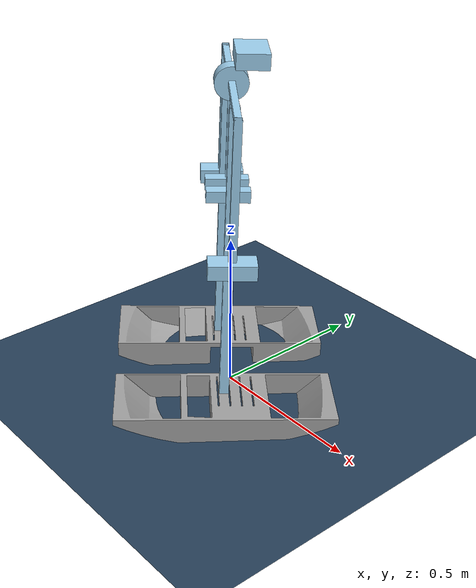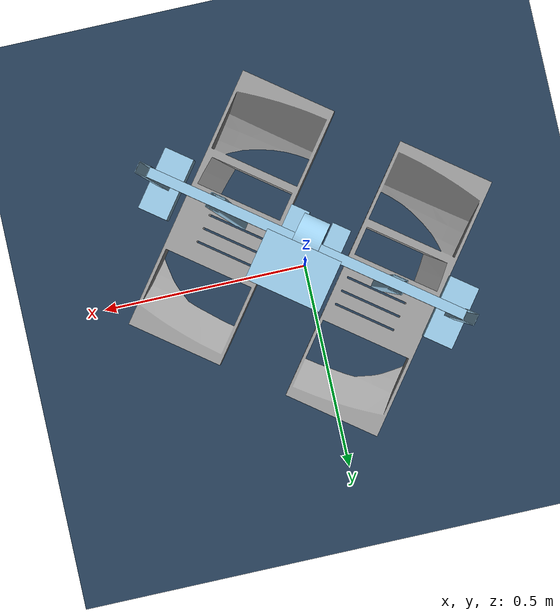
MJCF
<mujoco model="scene">
    <include file="robot.xml" />

    <visual>
        <headlight diffuse="0.6 0.6 0.6" ambient="0.3 0.3 0.3" specular="0 0 0" />
        <rgba haze="0.15 0.25 0.35 1" />
        <global azimuth="160" elevation="-20" />
    </visual>

    <asset>
        <texture type="skybox" builtin="gradient" rgb1="0.3 0.5 0.7" rgb2="0 0 0" width="512"
            height="3072" />
        <texture type="2d" name="groundplane" builtin="checker" mark="edge" rgb1="0.2 0.3 0.4"
            rgb2="0.1 0.2 0.3"
            markrgb="0.8 0.8 0.8" width="300" height="300" />
        <material name="groundplane" texture="groundplane" texuniform="true" texrepeat="5 5"
            reflectance="0.2" />
    </asset>

    <worldbody>
        <light pos="0 0 3.5" dir="0 0 -1" directional="true" />
        <geom name="floor" size="0 0 0.05" pos="0 0 0" friction = "1 0.003 0.2" type="plane" material="groundplane" />
    </worldbody>
</mujoco>

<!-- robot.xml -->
<!-- Generated using onshape-to-robot -->
<!-- Onshape https://cad.onshape.com/documents/17c5c8d07f4ec308269aab5c/w/49bf5d1c311d43a28f235e29/e/5fc1d1e4321a0935153c1d8f -->
<mujoco model="Bigfoot">
  <compiler angle="radian" meshdir="assets" autolimits="true"/>
  <default>
    <default class="Bigfoot">
      <joint frictionloss="0.1" armature="0.005"/>
      <motor ctrllimited="true" ctrlrange="-25 25"/>
      <default class="visual">
        <geom type="mesh" contype="0" conaffinity="0" group="2"/>
      </default>
      <default class="collision">
        <geom group="3"/>
      </default>
    </default>
  </default>
  <worldbody>
    <!-- Link motor -->
    <body name="motor" pos="0 0 1.0" quat="-0.94857412 0.01568716 -0.00530978 0.31612157" childclass="Bigfoot">
      <freejoint name="motor_freejoint"/>
      <inertial pos="-0.0180294 0.0078004 -0.355012" mass="4.444" fullinertia="0.753982 0.890493 0.219429 1.73138e-05 -0.0945368 -0.0124142"/>
      <!-- Part simplified_motor___arm_rod -->
      <geom type="mesh" class="visual" pos="-0.30932 -5.55112e-17 2.77556e-17" quat="0.5 0.5 0.5 0.5" mesh="simplified_motor___arm_rod" material="simplified_motor___arm_rod_material"/>
      <geom type="mesh" class="collision" pos="-0.30932 -5.55112e-17 2.77556e-17" quat="0.5 0.5 0.5 0.5" mesh="simplified_motor___arm_rod" material="simplified_motor___arm_rod_material"/>
      <!-- Part cf_rod___leg -->
      <geom type="mesh" class="visual" pos="-0.179383 4.16334e-17 -0.9239" quat="1 -6.42713e-17 1.11022e-16 2.08167e-17" mesh="cf_rod___leg" material="cf_rod___leg_material"/>
      <geom type="mesh" class="collision" pos="-0.179383 4.16334e-17 -0.9239" quat="1 -6.42713e-17 1.11022e-16 2.08167e-17" mesh="cf_rod___leg" material="cf_rod___leg_material"/>
      <!-- Part raspberry_pi___battery___motor_cover -->
      <geom type="mesh" class="visual" pos="-1.66533e-16 0.0535 0.0992" quat="0 1 0 0" mesh="raspberry_pi___battery___motor_cover" material="raspberry_pi___battery___motor_cover_material"/>
      <geom type="mesh" class="collision" pos="-1.66533e-16 0.0535 0.0992" quat="0 1 0 0" mesh="raspberry_pi___battery___motor_cover" material="raspberry_pi___battery___motor_cover_material"/>
      <!-- Part footstl_scaled_v4_mirrored -->
      <geom name="right_foot_1" type="mesh" class="visual" pos="-0.208871 0.0274398 -0.9239" quat="6.46484e-17 1 1.06661e-17 9.04496e-18" mesh="footstl_scaled_v4_mirrored" material="footstl_scaled_v4_mirrored_material"/>
      <geom name="right_foot_1_col" type="mesh" class="collision" pos="-0.208871 0.0274398 -0.9239" quat="6.46484e-17 1 1.06661e-17 9.04496e-18" mesh="footstl_scaled_v4_mirrored" material="footstl_scaled_v4_mirrored_material"/>
      <!-- Part arm_rod -->
      <geom type="mesh" class="visual" pos="0.320432 2.77556e-17 0.0095" quat="6.93889e-17 8.78706e-19 6.50521e-17 1" mesh="arm_rod" material="arm_rod_material"/>
      <geom type="mesh" class="collision" pos="0.320432 2.77556e-17 0.0095" quat="6.93889e-17 8.78706e-19 6.50521e-17 1" mesh="arm_rod" material="arm_rod_material"/>
      <!-- Part exo_hip_rod -->
      <geom type="mesh" class="visual" pos="-0.045 2.77556e-17 -0.3093" quat="1 -9.01669e-17 3.33067e-16 9.71445e-17" mesh="exo_hip_rod" material="exo_hip_rod_material"/>
      <geom type="mesh" class="collision" pos="-0.045 2.77556e-17 -0.3093" quat="1 -9.01669e-17 3.33067e-16 9.71445e-17" mesh="exo_hip_rod" material="exo_hip_rod_material"/>
      <!-- Part hip_inner_right -->
      <geom type="mesh" class="visual" pos="-0.045 1.38778e-17 -0.3443" quat="1 -6.49274e-17 -0 -1.04083e-16" mesh="hip_inner_right" material="hip_inner_right_material"/>
      <geom type="mesh" class="collision" pos="-0.045 1.38778e-17 -0.3443" quat="1 -6.49274e-17 -0 -1.04083e-16" mesh="hip_inner_right" material="hip_inner_right_material"/>
      <!-- Part motor -->
      <geom type="mesh" class="visual" pos="-0.025 0 2.77556e-17" quat="0.707107 0 0.707107 1.11022e-16" mesh="motor" material="motor_material"/>
      <geom type="mesh" class="collision" pos="-0.025 0 2.77556e-17" quat="0.707107 0 0.707107 1.11022e-16" mesh="motor" material="motor_material"/>
      <!-- Part battery -->
      <geom type="mesh" class="visual" pos="0.320432 7.45931e-17 -0.4405" quat="1 -6.46484e-17 2.22045e-16 1.6005e-17" mesh="battery" material="battery_material"/>
      <geom type="mesh" class="collision" pos="0.320432 7.45931e-17 -0.4405" quat="1 -6.46484e-17 2.22045e-16 1.6005e-17" mesh="battery" material="battery_material"/>
      <!-- Link simplified_motor___arm_rod -->
      <body name="simplified_motor___arm_rod" pos="0.025 4.26644e-18 6.83537e-18" quat="3.62575e-16 -0.707107 -4.44089e-16 0.707107">
        <!-- Joint from motor to simplified_motor___arm_rod -->
        <joint axis="0 0 1" name="hip" type="hinge"/>
        <inertial pos="0.523 -0.000826344 -0.000812721" mass="3.104" fullinertia="0.215327 0.59576 0.458662 0.000996794 0.0810771 -0.000576093"/>
        <!-- Part hip_inner_right_2 -->
        <geom type="mesh" class="visual" pos="0.3443 6.34483e-17 -0.02" quat="8.11852e-17 0.707107 0 -0.707107" mesh="hip_inner_right" material="hip_inner_right_material"/>
        <geom type="mesh" class="collision" pos="0.3443 6.34483e-17 -0.02" quat="8.11852e-17 0.707107 0 -0.707107" mesh="hip_inner_right" material="hip_inner_right_material"/>
        <!-- Part arm_rod_2 -->
        <geom type="mesh" class="visual" pos="-0.0095 -1.15648e-18 0.345432" quat="7.23671e-17 -0.707107 0 0.707107" mesh="arm_rod" material="arm_rod_material"/>
        <geom type="mesh" class="collision" pos="-0.0095 -1.15648e-18 0.345432" quat="7.23671e-17 -0.707107 0 0.707107" mesh="arm_rod" material="arm_rod_material"/>
        <!-- Part cf_rod___leg_2 -->
        <geom type="mesh" class="visual" pos="0.9239 2.03484e-16 -0.154383" quat="1.19221e-16 0.707107 1.11022e-16 -0.707107" mesh="cf_rod___leg" material="cf_rod___leg_material"/>
        <geom type="mesh" class="collision" pos="0.9239 2.03484e-16 -0.154383" quat="1.19221e-16 0.707107 1.11022e-16 -0.707107" mesh="cf_rod___leg" material="cf_rod___leg_material"/>
        <!-- Part simplified_motor___arm_rod_2 -->
        <geom type="mesh" class="visual" pos="5.94935e-19 5.78241e-19 -0.28432" quat="1 -0 -0 2.2693e-16" mesh="simplified_motor___arm_rod" material="simplified_motor___arm_rod_material"/>
        <geom type="mesh" class="collision" pos="5.94935e-19 5.78241e-19 -0.28432" quat="1 -0 -0 2.2693e-16" mesh="simplified_motor___arm_rod" material="simplified_motor___arm_rod_material"/>
        <!-- Part footstl_scaled_v4 -->
        <geom name="left_foot_1" type="mesh" class="visual" pos="0.9239 -0.0274398 -0.183871" quat="0.707107 7.13756e-17 -0.707107 2.22045e-16" mesh="footstl_scaled_v4" material="footstl_scaled_v4_material"/>
        <geom name="left_foot_1_col" type="mesh" class="collision" pos="0.9239 -0.0274398 -0.183871" quat="0.707107 7.13756e-17 -0.707107 2.22045e-16" mesh="footstl_scaled_v4" material="footstl_scaled_v4_material"/>
        <!-- Part battery_2 -->
        <geom type="mesh" class="visual" pos="0.4405 -3.95747e-17 0.345432" quat="0.707107 -1.00983e-16 -0.707107 1.11022e-16" mesh="battery" material="battery_material"/>
        <geom type="mesh" class="collision" pos="0.4405 -3.95747e-17 0.345432" quat="0.707107 -1.00983e-16 -0.707107 1.11022e-16" mesh="battery" material="battery_material"/>
        <!-- Part exo_hip_rod_2 -->
        <geom type="mesh" class="visual" pos="0.3093 5.53225e-17 -0.02" quat="6.05456e-17 0.707107 1.11022e-16 -0.707107" mesh="exo_hip_rod" material="exo_hip_rod_material"/>
        <geom type="mesh" class="collision" pos="0.3093 5.53225e-17 -0.02" quat="6.05456e-17 0.707107 1.11022e-16 -0.707107" mesh="exo_hip_rod" material="exo_hip_rod_material"/>
      </body>
    </body>
  </worldbody>
  <asset>
    <mesh file="battery.stl"/>
    <mesh file="footstl_scaled_v4_mirrored.stl"/>
    <mesh file="raspberry_pi___battery___motor_cover.stl"/>
    <mesh file="cf_rod___leg.stl"/>
    <mesh file="motor.stl"/>
    <mesh file="arm_rod.stl"/>
    <mesh file="footstl_scaled_v4.stl"/>
    <mesh file="exo_hip_rod.stl"/>
    <mesh file="hip_inner_right.stl"/>
    <mesh file="simplified_motor___arm_rod.stl"/>
    <material name="simplified_motor___arm_rod_material" rgba="0.615686 0.811765 0.929412 1"/>
    <material name="cf_rod___leg_material" rgba="0.615686 0.811765 0.929412 1"/>
    <material name="raspberry_pi___battery___motor_cover_material" rgba="0.615686 0.811765 0.929412 1"/>
    <material name="footstl_scaled_v4_mirrored_material" rgba="0.627451 0.627451 0.627451 1"/>
    <material name="arm_rod_material" rgba="0.615686 0.811765 0.929412 1"/>
    <material name="exo_hip_rod_material" rgba="0.615686 0.811765 0.929412 1"/>
    <material name="hip_inner_right_material" rgba="0.615686 0.811765 0.929412 1"/>
    <material name="motor_material" rgba="0.615686 0.811765 0.929412 1"/>
    <material name="battery_material" rgba="0.615686 0.811765 0.929412 1"/>
    <material name="footstl_scaled_v4_material" rgba="0.627451 0.627451 0.627451 1"/>
  </asset>
  <actuator>
    <motor class="Bigfoot" name="hip" joint="hip" ctrlrange = "-25.0 25.0"/>
  </actuator>
  <equality/>
</mujoco>
